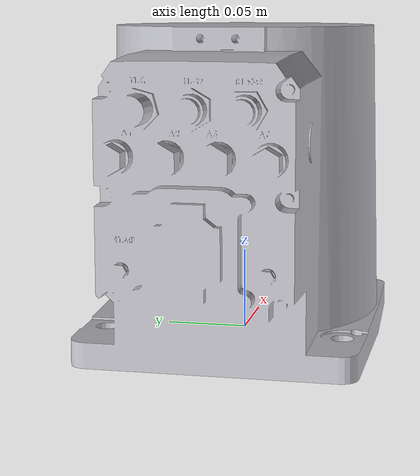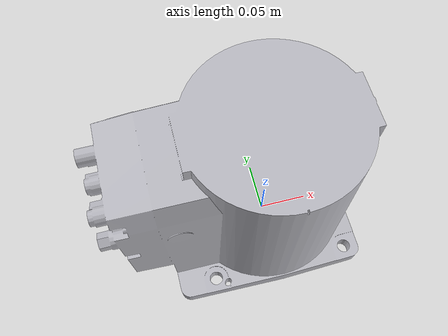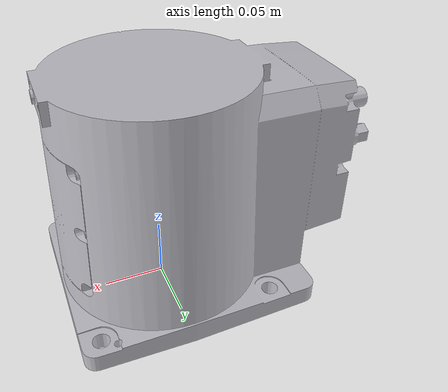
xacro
<?xml version="1.0" ?>
<robot name="(Unsaved)" xmlns:xacro="http://www.ros.org/wiki/xacro">

<xacro:include filename="$(find (Unsaved)_description)/urdf/materials.xacro" />
<xacro:include filename="$(find (Unsaved)_description)/urdf/(Unsaved).trans" />
<xacro:include filename="$(find (Unsaved)_description)/urdf/(Unsaved).gazebo" />
<link name="base_link">
  <inertial>
    <origin xyz="0.002431440701302329 0.13050212659079538 0.01332531716081259" rpy="0 0 0"/>
    <mass value="2.8894718370283434"/>
    <inertia ixx="0.002711" iyy="0.010219" izz="0.012321" ixy="-3.5e-05" iyz="-1e-05" ixz="-0.000456"/>
  </inertial>
  <visual>
    <origin xyz="0 0 0" rpy="0 0 0"/>
    <geometry>
      <mesh filename="package://(Unsaved)_description/meshes/base_link.stl" scale="0.001 0.001 0.001"/>
    </geometry>
    <material name="silver"/>
  </visual>
  <collision>
    <origin xyz="0 0 0" rpy="0 0 0"/>
    <geometry>
      <mesh filename="package://(Unsaved)_description/meshes/base_link.stl" scale="0.001 0.001 0.001"/>
    </geometry>
  </collision>
</link>

</robot>
